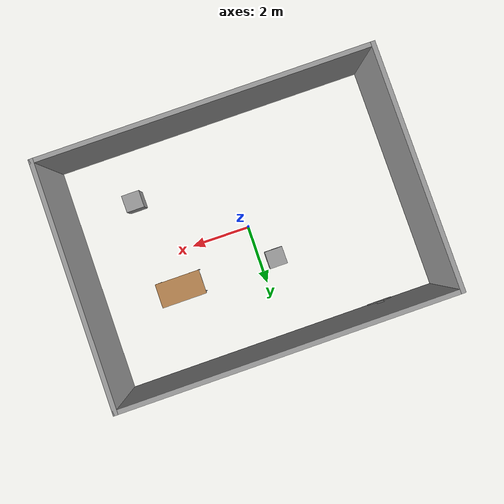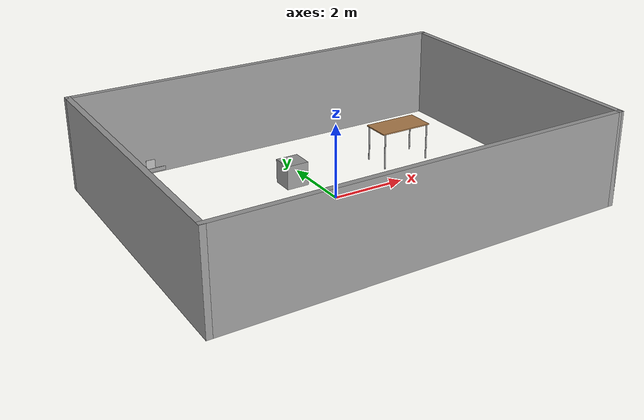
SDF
<sdf version="1.6">
 <world name="default">
  <gravity>0 0 -9.8</gravity>
  <physics name="default_physics" default="0" type="ode">
   <max_step_size>0.001</max_step_size>
   <real_time_factor>1</real_time_factor>
   <real_time_update_rate>1000</real_time_update_rate>
  </physics>
  <light name="Warehouse_CeilingLight_003" type="point">
   <pose>0 0 9 0 -0 0</pose>
   <diffuse>0.5 0.5 0.5 1</diffuse>
   <specular>0.2 0.2 0.2 1</specular>
   <attenuation>
    <range>80</range>
    <constant>0.01</constant>
    <linear>0.01</linear>
    <quadratic>0.001</quadratic>
   </attenuation>
   <direction>0.1 0.1 -1</direction>
  </light>
  <magnetic_field>6e-06 2.3e-05 -4.2e-05</magnetic_field>
  <atmosphere type="adiabatic"/>
  <scene><ambient>0.4 0.4 0.4 1</ambient><background>0.7 0.7 0.7 1</background><shadows>1</shadows></scene>
  <audio><device>default</device></audio>
  <spherical_coordinates>
   <surface_model>EARTH_WGS84</surface_model>
   <latitude_deg>0</latitude_deg>
   <longitude_deg>0</longitude_deg>
   <elevation>0</elevation>
   <heading_deg>0</heading_deg>
  </spherical_coordinates>
  <model name="walls">
   <pose>0.091263 0.02187 0 0 -0 0</pose>
   <link name="Wall_0">
    <collision name="Wall_0_Collision">
     <geometry><box><size>11 0.15 2.5</size></box></geometry>
     <pose>0 0 1.25 0 -0 0</pose>
    </collision>
    <visual name="Wall_0_Visual">
     <pose>0 0 1.25 0 -0 0</pose>
     <geometry><box><size>11 0.15 2.5</size></box></geometry>
     <material>
      <script><uri>file://media/materials/scripts/gazebo.material</uri><name>Gazebo/Grey</name></script>
      <ambient>1 1 1 1</ambient>
     </material>
     <meta><layer>0</layer></meta>
    </visual>
    <pose>-0 -3.925 0 0 -0 0</pose>
   </link>
   <link name="Wall_1">
    <collision name="Wall_1_Collision">
     <geometry><box><size>8 0.15 2.5</size></box></geometry>
     <pose>0 0 1.25 0 -0 0</pose>
    </collision>
    <visual name="Wall_1_Visual">
     <pose>0 0 1.25 0 -0 0</pose>
     <geometry><box><size>8 0.15 2.5</size></box></geometry>
     <material>
      <script><uri>file://media/materials/scripts/gazebo.material</uri><name>Gazebo/Grey</name></script>
      <ambient>1 1 1 1</ambient>
     </material>
     <meta><layer>0</layer></meta>
    </visual>
    <pose>5.425 -0 0 0 -0 1.5708</pose>
   </link>
   <link name="Wall_2">
    <collision name="Wall_2_Collision">
     <geometry><box><size>11 0.15 2.5</size></box></geometry>
     <pose>0 0 1.25 0 -0 0</pose>
    </collision>
    <visual name="Wall_2_Visual">
     <pose>0 0 1.25 0 -0 0</pose>
     <geometry><box><size>11 0.15 2.5</size></box></geometry>
     <material>
      <script><uri>file://media/materials/scripts/gazebo.material</uri><name>Gazebo/Grey</name></script>
      <ambient>1 1 1 1</ambient>
     </material>
     <meta><layer>0</layer></meta>
    </visual>
    <pose>-0 3.925 0 0 -0 3.14159</pose>
   </link>
   <link name="Wall_3">
    <collision name="Wall_3_Collision">
     <geometry><box><size>8 0.15 2.5</size></box></geometry>
     <pose>0 0 1.25 0 -0 0</pose>
    </collision>
    <visual name="Wall_3_Visual">
     <pose>0 0 1.25 0 -0 0</pose>
     <geometry><box><size>8 0.15 2.5</size></box></geometry>
     <material>
      <script><uri>file://media/materials/scripts/gazebo.material</uri><name>Gazebo/Grey</name></script>
      <ambient>1 1 1 1</ambient>
     </material>
     <meta><layer>0</layer></meta>
    </visual>
    <pose>-5.425 -0 0 0 -0 -1.5708</pose>
   </link>
   <static>1</static>
  </model>
  <model name="unit_box">
   <pose>3.35705 -2.05144 0.356896 0 -0 0</pose>
   <link name="link">
    <inertial>
     <mass>1</mass>
     <inertia>
      <ixx>0.166667</ixx>
      <ixy>0</ixy>
      <ixz>0</ixz>
      <iyy>0.166667</iyy>
      <iyz>0</iyz>
      <izz>0.166667</izz>
     </inertia>
    </inertial>
    <collision name="collision">
     <geometry><box><size>0.607705 0.582784 0.645341</size></box></geometry>
    </collision>
    <visual name="visual">
     <geometry><box><size>0.607705 0.582784 0.645341</size></box></geometry>
     <material>
      <script><name>Gazebo/Grey</name><uri>file://media/materials/scripts/gazebo.material</uri></script>
     </material>
    </visual>
   </link>
  </model>
  <model name="unit_box_clone">
   <pose>-0.530641 1.2796 0.356896 0 -0 -1e-06</pose>
   <link name="link">
    <inertial>
     <mass>1</mass>
     <inertia>
      <ixx>0.166667</ixx>
      <ixy>0</ixy>
      <ixz>0</ixz>
      <iyy>0.166667</iyy>
      <iyz>0</iyz>
      <izz>0.166667</izz>
     </inertia>
    </inertial>
    <collision name="collision">
     <geometry><box><size>0.607706 0.582784 0.645341</size></box></geometry>
    </collision>
    <visual name="visual">
     <geometry><box><size>0.607706 0.582784 0.645341</size></box></geometry>
     <material>
      <script><name>Gazebo/Grey</name><uri>file://media/materials/scripts/gazebo.material</uri></script>
     </material>
    </visual>
   </link>
  </model>
  <model name="table">
   <static>1</static>
   <link name="link">
    <collision name="surface">
     <pose>0 0 1 0 -0 0</pose>
     <geometry><box><size>1.5 0.8 0.03</size></box></geometry>
     <surface><friction><ode><mu>0.6</mu><mu2>0.6</mu2></ode></friction></surface>
    </collision>
    <visual name="visual1">
     <pose>0 0 1 0 -0 0</pose>
     <geometry><box><size>1.5 0.8 0.03</size></box></geometry>
     <material>
      <script><uri>file://media/materials/scripts/gazebo.material</uri><name>Gazebo/Wood</name></script>
     </material>
    </visual>
    <collision name="front_left_leg">
     <pose>0.68 0.38 0.5 0 -0 0</pose>
     <geometry><cylinder><radius>0.02</radius><length>1</length></cylinder></geometry>
    </collision>
    <visual name="front_left_leg">
     <pose>0.68 0.38 0.5 0 -0 0</pose>
     <geometry><cylinder><radius>0.02</radius><length>1</length></cylinder></geometry>
     <material>
      <script><uri>file://media/materials/scripts/gazebo.material</uri><name>Gazebo/Grey</name></script>
     </material>
    </visual>
    <collision name="front_right_leg">
     <pose>0.68 -0.38 0.5 0 -0 0</pose>
     <geometry><cylinder><radius>0.02</radius><length>1</length></cylinder></geometry>
    </collision>
    <visual name="front_right_leg">
     <pose>0.68 -0.38 0.5 0 -0 0</pose>
     <geometry><cylinder><radius>0.02</radius><length>1</length></cylinder></geometry>
     <material>
      <script><uri>file://media/materials/scripts/gazebo.material</uri><name>Gazebo/Grey</name></script>
     </material>
    </visual>
    <collision name="back_right_leg">
     <pose>-0.68 -0.38 0.5 0 -0 0</pose>
     <geometry><cylinder><radius>0.02</radius><length>1</length></cylinder></geometry>
    </collision>
    <visual name="back_right_leg">
     <pose>-0.68 -0.38 0.5 0 -0 0</pose>
     <geometry><cylinder><radius>0.02</radius><length>1</length></cylinder></geometry>
     <material>
      <script><uri>file://media/materials/scripts/gazebo.material</uri><name>Gazebo/Grey</name></script>
     </material>
    </visual>
    <collision name="back_left_leg">
     <pose>-0.68 0.38 0.5 0 -0 0</pose>
     <geometry><cylinder><radius>0.02</radius><length>1</length></cylinder></geometry>
    </collision>
    <visual name="back_left_leg">
     <pose>-0.68 0.38 0.5 0 -0 0</pose>
     <geometry><cylinder><radius>0.02</radius><length>1</length></cylinder></geometry>
     <material>
      <script><uri>file://media/materials/scripts/gazebo.material</uri><name>Gazebo/Grey</name></script>
     </material>
    </visual>
   </link>
   <pose>2.73688 1.20765 0 0 -0 0</pose>
  </model>
  <model name="unit_box_0">
   <pose>-3.39849 3.86003 0.088216 -0.000111 0 -0.000586</pose>
   <link name="link">
    <inertial>
     <mass>1</mass>
     <inertia>
      <ixx>0.166667</ixx>
      <ixy>0</ixy>
      <ixz>0</ixz>
      <iyy>0.166667</iyy>
      <iyz>0</iyz>
      <izz>0.166667</izz>
     </inertia>
    </inertial>
    <collision name="collision">
     <geometry><box><size>0.831262 0.0192164 0.107978</size></box></geometry>
    </collision>
    <visual name="visual">
     <geometry><box><size>0.831262 0.0192164 0.107978</size></box></geometry>
     <material>
      <script><name>Gazebo/Grey</name><uri>file://media/materials/scripts/gazebo.material</uri></script>
     </material>
    </visual>
   </link>
  </model>
  <model name="qrCode">
   <pose>-3.38521 3.86675 0.267215 -8.3e-05 0.000159 3e-06</pose>
   <link name="link">
    <inertial>
     <mass>1</mass>
     <inertia>
      <ixx>0.166667</ixx>
      <ixy>0</ixy>
      <ixz>0</ixz>
      <iyy>0.166667</iyy>
      <iyz>0</iyz>
      <izz>0.166667</izz>
     </inertia>
    </inertial>
    <collision name="collision"><geometry><box><size>0.25 0.010232 0.25</size></box></geometry></collision>
    <visual name="visual">
     <geometry><box><size>0.25 0.010232 0.25</size></box></geometry>
     <material>
      <script>
       <uri>model://my_ground_plane/materials/scripts</uri>
       <uri>model://my_ground_plane/materials/textures/</uri>
       <name>MyGroundPlane/Image</name>
      </script>
     </material>
    </visual>
   </link>
  </model>
 </world>
</sdf>
